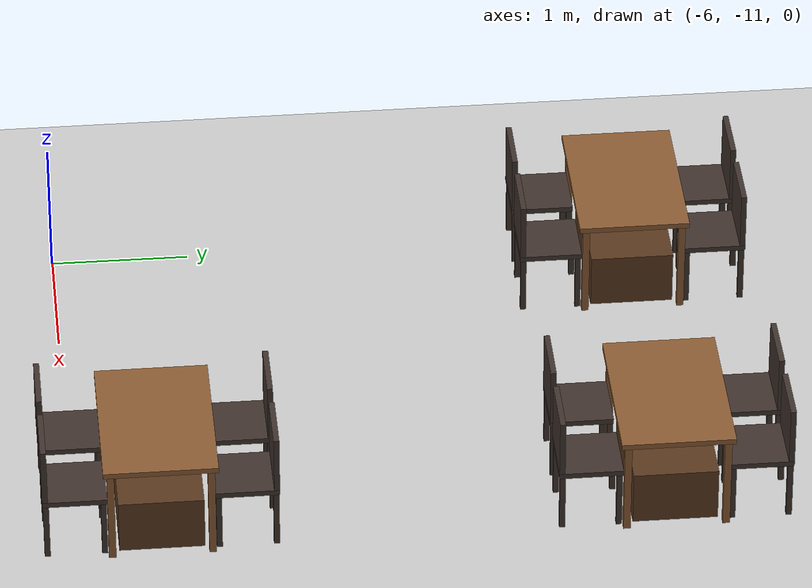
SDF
<sdf version="1.6">
 <world name="restaurant">
  <model name="ground_plane">
   <static>1</static>
   <link name="link">
    <collision name="collision">
     <geometry><plane><normal>0 0 1</normal><size>100 100</size></plane></geometry>
     <surface><friction><ode><mu>100</mu><mu2>50</mu2></ode></friction></surface>
    </collision>
    <visual name="visual">
     <cast_shadows>0</cast_shadows>
     <geometry><plane><normal>0 0 1</normal><size>100 100</size></plane></geometry>
     <material>
      <script><uri>file://media/materials/scripts/gazebo.material</uri><name>Gazebo/Grey</name></script>
     </material>
    </visual>
   </link>
  </model>
  <model name="table_13">
   <static>true</static>
   <pose>-5.6360 -6.7909 0 0 0 0</pose>
   <link name="link">
    <collision name="base_collision">
     <pose>0.0000 0.0000 0.2000 0 0 0</pose>
     <geometry><box><size>1.0000 0.6000 0.4000</size></box></geometry>
    </collision>
    <visual name="base_visual">
     <pose>0.0000 0.0000 0.2000 0 0 0</pose>
     <geometry><box><size>1.0000 0.6000 0.4000</size></box></geometry>
     <material>
      <ambient>0.35 0.22 0.12 1</ambient>
      <diffuse>0.35 0.22 0.12 1</diffuse>
      <specular>0.05 0.05 0.05 1</specular>
     </material>
    </visual>
    <collision name="top_collision">
     <pose>0.0000 0.0000 0.7300 0 0 0</pose>
     <geometry><box><size>1.2000 0.8000 0.0400</size></box></geometry>
    </collision>
    <visual name="top_visual">
     <pose>0.0000 0.0000 0.7300 0 0 0</pose>
     <geometry><box><size>1.2000 0.8000 0.0400</size></box></geometry>
     <material>
      <ambient>0.55 0.36 0.2 1</ambient>
      <diffuse>0.55 0.36 0.2 1</diffuse>
      <specular>0.05 0.05 0.05 1</specular>
     </material>
    </visual>
    <collision name="leg0_collision">
     <pose>0.5500 0.3500 0.3550 0 0 0</pose>
     <geometry><box><size>0.0500 0.0500 0.7100</size></box></geometry>
    </collision>
    <visual name="leg0_visual">
     <pose>0.5500 0.3500 0.3550 0 0 0</pose>
     <geometry><box><size>0.0500 0.0500 0.7100</size></box></geometry>
     <material>
      <ambient>0.55 0.36 0.2 1</ambient>
      <diffuse>0.55 0.36 0.2 1</diffuse>
      <specular>0.05 0.05 0.05 1</specular>
     </material>
    </visual>
    <collision name="leg1_collision">
     <pose>0.5500 -0.3500 0.3550 0 0 0</pose>
     <geometry><box><size>0.0500 0.0500 0.7100</size></box></geometry>
    </collision>
    <visual name="leg1_visual">
     <pose>0.5500 -0.3500 0.3550 0 0 0</pose>
     <geometry><box><size>0.0500 0.0500 0.7100</size></box></geometry>
     <material>
      <ambient>0.55 0.36 0.2 1</ambient>
      <diffuse>0.55 0.36 0.2 1</diffuse>
      <specular>0.05 0.05 0.05 1</specular>
     </material>
    </visual>
    <collision name="leg2_collision">
     <pose>-0.5500 0.3500 0.3550 0 0 0</pose>
     <geometry><box><size>0.0500 0.0500 0.7100</size></box></geometry>
    </collision>
    <visual name="leg2_visual">
     <pose>-0.5500 0.3500 0.3550 0 0 0</pose>
     <geometry><box><size>0.0500 0.0500 0.7100</size></box></geometry>
     <material>
      <ambient>0.55 0.36 0.2 1</ambient>
      <diffuse>0.55 0.36 0.2 1</diffuse>
      <specular>0.05 0.05 0.05 1</specular>
     </material>
    </visual>
    <collision name="leg3_collision">
     <pose>-0.5500 -0.3500 0.3550 0 0 0</pose>
     <geometry><box><size>0.0500 0.0500 0.7100</size></box></geometry>
    </collision>
    <visual name="leg3_visual">
     <pose>-0.5500 -0.3500 0.3550 0 0 0</pose>
     <geometry><box><size>0.0500 0.0500 0.7100</size></box></geometry>
     <material>
      <ambient>0.55 0.36 0.2 1</ambient>
      <diffuse>0.55 0.36 0.2 1</diffuse>
      <specular>0.05 0.05 0.05 1</specular>
     </material>
    </visual>
    <collision name="chair0_seat_collision">
     <pose>-0.3000 0.6000 0.4500 0 0 0</pose>
     <geometry><box><size>0.4500 0.4500 0.0400</size></box></geometry>
    </collision>
    <visual name="chair0_seat_visual">
     <pose>-0.3000 0.6000 0.4500 0 0 0</pose>
     <geometry><box><size>0.4500 0.4500 0.0400</size></box></geometry>
     <material>
      <ambient>0.25 0.2 0.18 1</ambient>
      <diffuse>0.25 0.2 0.18 1</diffuse>
      <specular>0.05 0.05 0.05 1</specular>
     </material>
    </visual>
    <collision name="chair0_leg0_collision">
     <pose>-0.1000 0.8000 0.2150 0 0 0</pose>
     <geometry><box><size>0.0400 0.0400 0.4300</size></box></geometry>
    </collision>
    <visual name="chair0_leg0_visual">
     <pose>-0.1000 0.8000 0.2150 0 0 0</pose>
     <geometry><box><size>0.0400 0.0400 0.4300</size></box></geometry>
     <material>
      <ambient>0.25 0.2 0.18 1</ambient>
      <diffuse>0.25 0.2 0.18 1</diffuse>
      <specular>0.05 0.05 0.05 1</specular>
     </material>
    </visual>
    <collision name="chair0_leg1_collision">
     <pose>-0.1000 0.4000 0.2150 0 0 0</pose>
     <geometry><box><size>0.0400 0.0400 0.4300</size></box></geometry>
    </collision>
    <visual name="chair0_leg1_visual">
     <pose>-0.1000 0.4000 0.2150 0 0 0</pose>
     <geometry><box><size>0.0400 0.0400 0.4300</size></box></geometry>
     <material>
      <ambient>0.25 0.2 0.18 1</ambient>
      <diffuse>0.25 0.2 0.18 1</diffuse>
      <specular>0.05 0.05 0.05 1</specular>
     </material>
    </visual>
    <collision name="chair0_leg2_collision">
     <pose>-0.5000 0.8000 0.2150 0 0 0</pose>
     <geometry><box><size>0.0400 0.0400 0.4300</size></box></geometry>
    </collision>
    <visual name="chair0_leg2_visual">
     <pose>-0.5000 0.8000 0.2150 0 0 0</pose>
     <geometry><box><size>0.0400 0.0400 0.4300</size></box></geometry>
     <material>
      <ambient>0.25 0.2 0.18 1</ambient>
      <diffuse>0.25 0.2 0.18 1</diffuse>
      <specular>0.05 0.05 0.05 1</specular>
     </material>
    </visual>
    <collision name="chair0_leg3_collision">
     <pose>-0.5000 0.4000 0.2150 0 0 0</pose>
     <geometry><box><size>0.0400 0.0400 0.4300</size></box></geometry>
    </collision>
    <visual name="chair0_leg3_visual">
     <pose>-0.5000 0.4000 0.2150 0 0 0</pose>
     <geometry><box><size>0.0400 0.0400 0.4300</size></box></geometry>
     <material>
      <ambient>0.25 0.2 0.18 1</ambient>
      <diffuse>0.25 0.2 0.18 1</diffuse>
      <specular>0.05 0.05 0.05 1</specular>
     </material>
    </visual>
    <collision name="chair0_back_collision">
     <pose>-0.3000 0.8050 0.6850 0 0 0</pose>
     <geometry><box><size>0.4500 0.0400 0.4300</size></box></geometry>
    </collision>
    <visual name="chair0_back_visual">
     <pose>-0.3000 0.8050 0.6850 0 0 0</pose>
     <geometry><box><size>0.4500 0.0400 0.4300</size></box></geometry>
     <material>
      <ambient>0.25 0.2 0.18 1</ambient>
      <diffuse>0.25 0.2 0.18 1</diffuse>
      <specular>0.05 0.05 0.05 1</specular>
     </material>
    </visual>
    <collision name="chair1_seat_collision">
     <pose>-0.3000 -0.6000 0.4500 0 0 0</pose>
     <geometry><box><size>0.4500 0.4500 0.0400</size></box></geometry>
    </collision>
    <visual name="chair1_seat_visual">
     <pose>-0.3000 -0.6000 0.4500 0 0 0</pose>
     <geometry><box><size>0.4500 0.4500 0.0400</size></box></geometry>
     <material>
      <ambient>0.25 0.2 0.18 1</ambient>
      <diffuse>0.25 0.2 0.18 1</diffuse>
      <specular>0.05 0.05 0.05 1</specular>
     </material>
    </visual>
    <collision name="chair1_leg0_collision">
     <pose>-0.1000 -0.4000 0.2150 0 0 0</pose>
     <geometry><box><size>0.0400 0.0400 0.4300</size></box></geometry>
    </collision>
    <visual name="chair1_leg0_visual">
     <pose>-0.1000 -0.4000 0.2150 0 0 0</pose>
     <geometry><box><size>0.0400 0.0400 0.4300</size></box></geometry>
     <material>
      <ambient>0.25 0.2 0.18 1</ambient>
      <diffuse>0.25 0.2 0.18 1</diffuse>
      <specular>0.05 0.05 0.05 1</specular>
     </material>
    </visual>
    <collision name="chair1_leg1_collision">
     <pose>-0.1000 -0.8000 0.2150 0 0 0</pose>
     <geometry><box><size>0.0400 0.0400 0.4300</size></box></geometry>
    </collision>
    <visual name="chair1_leg1_visual">
     <pose>-0.1000 -0.8000 0.2150 0 0 0</pose>
     <geometry><box><size>0.0400 0.0400 0.4300</size></box></geometry>
     <material>
      <ambient>0.25 0.2 0.18 1</ambient>
      <diffuse>0.25 0.2 0.18 1</diffuse>
      <specular>0.05 0.05 0.05 1</specular>
     </material>
    </visual>
    <collision name="chair1_leg2_collision">
     <pose>-0.5000 -0.4000 0.2150 0 0 0</pose>
     <geometry><box><size>0.0400 0.0400 0.4300</size></box></geometry>
    </collision>
    <visual name="chair1_leg2_visual">
     <pose>-0.5000 -0.4000 0.2150 0 0 0</pose>
     <geometry><box><size>0.0400 0.0400 0.4300</size></box></geometry>
     <material>
      <ambient>0.25 0.2 0.18 1</ambient>
      <diffuse>0.25 0.2 0.18 1</diffuse>
      <specular>0.05 0.05 0.05 1</specular>
     </material>
    </visual>
    <collision name="chair1_leg3_collision">
     <pose>-0.5000 -0.8000 0.2150 0 0 0</pose>
     <geometry><box><size>0.0400 0.0400 0.4300</size></box></geometry>
    </collision>
    <visual name="chair1_leg3_visual">
     <pose>-0.5000 -0.8000 0.2150 0 0 0</pose>
     <geometry><box><size>0.0400 0.0400 0.4300</size></box></geometry>
     <material>
      <ambient>0.25 0.2 0.18 1</ambient>
      <diffuse>0.25 0.2 0.18 1</diffuse>
      <specular>0.05 0.05 0.05 1</specular>
     </material>
    </visual>
    <collision name="chair1_back_collision">
     <pose>-0.3000 -0.8050 0.6850 0 0 0</pose>
     <geometry><box><size>0.4500 0.0400 0.4300</size></box></geometry>
    </collision>
    <visual name="chair1_back_visual">
     <pose>-0.3000 -0.8050 0.6850 0 0 0</pose>
     <geometry><box><size>0.4500 0.0400 0.4300</size></box></geometry>
     <material>
      <ambient>0.25 0.2 0.18 1</ambient>
      <diffuse>0.25 0.2 0.18 1</diffuse>
      <specular>0.05 0.05 0.05 1</specular>
     </material>
    </visual>
    <collision name="chair2_seat_collision">
     <pose>0.3000 0.6000 0.4500 0 0 0</pose>
     <geometry><box><size>0.4500 0.4500 0.0400</size></box></geometry>
    </collision>
    <visual name="chair2_seat_visual">
     <pose>0.3000 0.6000 0.4500 0 0 0</pose>
     <geometry><box><size>0.4500 0.4500 0.0400</size></box></geometry>
     <material>
      <ambient>0.25 0.2 0.18 1</ambient>
      <diffuse>0.25 0.2 0.18 1</diffuse>
      <specular>0.05 0.05 0.05 1</specular>
     </material>
    </visual>
    <collision name="chair2_leg0_collision">
     <pose>0.5000 0.8000 0.2150 0 0 0</pose>
     <geometry><box><size>0.0400 0.0400 0.4300</size></box></geometry>
    </collision>
    <visual name="chair2_leg0_visual">
     <pose>0.5000 0.8000 0.2150 0 0 0</pose>
     <geometry><box><size>0.0400 0.0400 0.4300</size></box></geometry>
     <material>
      <ambient>0.25 0.2 0.18 1</ambient>
      <diffuse>0.25 0.2 0.18 1</diffuse>
      <specular>0.05 0.05 0.05 1</specular>
     </material>
    </visual>
    <collision name="chair2_leg1_collision">
     <pose>0.5000 0.4000 0.2150 0 0 0</pose>
     <geometry><box><size>0.0400 0.0400 0.4300</size></box></geometry>
    </collision>
    <visual name="chair2_leg1_visual">
     <pose>0.5000 0.4000 0.2150 0 0 0</pose>
     <geometry><box><size>0.0400 0.0400 0.4300</size></box></geometry>
     <material>
      <ambient>0.25 0.2 0.18 1</ambient>
      <diffuse>0.25 0.2 0.18 1</diffuse>
      <specular>0.05 0.05 0.05 1</specular>
     </material>
    </visual>
    <collision name="chair2_leg2_collision">
     <pose>0.1000 0.8000 0.2150 0 0 0</pose>
     <geometry><box><size>0.0400 0.0400 0.4300</size></box></geometry>
    </collision>
    <visual name="chair2_leg2_visual">
     <pose>0.1000 0.8000 0.2150 0 0 0</pose>
     <geometry><box><size>0.0400 0.0400 0.4300</size></box></geometry>
     <material>
      <ambient>0.25 0.2 0.18 1</ambient>
      <diffuse>0.25 0.2 0.18 1</diffuse>
      <specular>0.05 0.05 0.05 1</specular>
     </material>
    </visual>
    <collision name="chair2_leg3_collision">
     <pose>0.1000 0.4000 0.2150 0 0 0</pose>
     <geometry><box><size>0.0400 0.0400 0.4300</size></box></geometry>
    </collision>
    <visual name="chair2_leg3_visual">
     <pose>0.1000 0.4000 0.2150 0 0 0</pose>
     <geometry><box><size>0.0400 0.0400 0.4300</size></box></geometry>
     <material>
      <ambient>0.25 0.2 0.18 1</ambient>
      <diffuse>0.25 0.2 0.18 1</diffuse>
      <specular>0.05 0.05 0.05 1</specular>
     </material>
    </visual>
    <collision name="chair2_back_collision">
     <pose>0.3000 0.8050 0.6850 0 0 0</pose>
     <geometry><box><size>0.4500 0.0400 0.4300</size></box></geometry>
    </collision>
    <visual name="chair2_back_visual">
     <pose>0.3000 0.8050 0.6850 0 0 0</pose>
     <geometry><box><size>0.4500 0.0400 0.4300</size></box></geometry>
     <material>
      <ambient>0.25 0.2 0.18 1</ambient>
      <diffuse>0.25 0.2 0.18 1</diffuse>
      <specular>0.05 0.05 0.05 1</specular>
     </material>
    </visual>
    <collision name="chair3_seat_collision">
     <pose>0.3000 -0.6000 0.4500 0 0 0</pose>
     <geometry><box><size>0.4500 0.4500 0.0400</size></box></geometry>
    </collision>
    <visual name="chair3_seat_visual">
     <pose>0.3000 -0.6000 0.4500 0 0 0</pose>
     <geometry><box><size>0.4500 0.4500 0.0400</size></box></geometry>
     <material>
      <ambient>0.25 0.2 0.18 1</ambient>
      <diffuse>0.25 0.2 0.18 1</diffuse>
      <specular>0.05 0.05 0.05 1</specular>
     </material>
    </visual>
    <collision name="chair3_leg0_collision">
     <pose>0.5000 -0.4000 0.2150 0 0 0</pose>
     <geometry><box><size>0.0400 0.0400 0.4300</size></box></geometry>
    </collision>
    <visual name="chair3_leg0_visual">
     <pose>0.5000 -0.4000 0.2150 0 0 0</pose>
     <geometry><box><size>0.0400 0.0400 0.4300</size></box></geometry>
     <material>
      <ambient>0.25 0.2 0.18 1</ambient>
      <diffuse>0.25 0.2 0.18 1</diffuse>
      <specular>0.05 0.05 0.05 1</specular>
     </material>
    </visual>
    <collision name="chair3_leg1_collision">
     <pose>0.5000 -0.8000 0.2150 0 0 0</pose>
     <geometry><box><size>0.0400 0.0400 0.4300</size></box></geometry>
    </collision>
    <visual name="chair3_leg1_visual">
     <pose>0.5000 -0.8000 0.2150 0 0 0</pose>
     <geometry><box><size>0.0400 0.0400 0.4300</size></box></geometry>
     <material>
      <ambient>0.25 0.2 0.18 1</ambient>
      <diffuse>0.25 0.2 0.18 1</diffuse>
      <specular>0.05 0.05 0.05 1</specular>
     </material>
    </visual>
    <collision name="chair3_leg2_collision">
     <pose>0.1000 -0.4000 0.2150 0 0 0</pose>
     <geometry><box><size>0.0400 0.0400 0.4300</size></box></geometry>
    </collision>
    <visual name="chair3_leg2_visual">
     <pose>0.1000 -0.4000 0.2150 0 0 0</pose>
     <geometry><box><size>0.0400 0.0400 0.4300</size></box></geometry>
     <material>
      <ambient>0.25 0.2 0.18 1</ambient>
      <diffuse>0.25 0.2 0.18 1</diffuse>
      <specular>0.05 0.05 0.05 1</specular>
     </material>
    </visual>
    <collision name="chair3_leg3_collision">
     <pose>0.1000 -0.8000 0.2150 0 0 0</pose>
     <geometry><box><size>0.0400 0.0400 0.4300</size></box></geometry>
    </collision>
    <visual name="chair3_leg3_visual">
     <pose>0.1000 -0.8000 0.2150 0 0 0</pose>
     <geometry><box><size>0.0400 0.0400 0.4300</size></box></geometry>
     <material>
      <ambient>0.25 0.2 0.18 1</ambient>
      <diffuse>0.25 0.2 0.18 1</diffuse>
      <specular>0.05 0.05 0.05 1</specular>
     </material>
    </visual>
    <collision name="chair3_back_collision">
     <pose>0.3000 -0.8050 0.6850 0 0 0</pose>
     <geometry><box><size>0.4500 0.0400 0.4300</size></box></geometry>
    </collision>
    <visual name="chair3_back_visual">
     <pose>0.3000 -0.8050 0.6850 0 0 0</pose>
     <geometry><box><size>0.4500 0.0400 0.4300</size></box></geometry>
     <material>
      <ambient>0.25 0.2 0.18 1</ambient>
      <diffuse>0.25 0.2 0.18 1</diffuse>
      <specular>0.05 0.05 0.05 1</specular>
     </material>
    </visual>
   </link>
  </model>
  <model name="table_14">
   <static>true</static>
   <pose>-3.0360 -6.7909 0 0 0 0</pose>
   <link name="link">
    <collision name="base_collision">
     <pose>0.0000 0.0000 0.2000 0 0 0</pose>
     <geometry><box><size>1.0000 0.6000 0.4000</size></box></geometry>
    </collision>
    <visual name="base_visual">
     <pose>0.0000 0.0000 0.2000 0 0 0</pose>
     <geometry><box><size>1.0000 0.6000 0.4000</size></box></geometry>
     <material>
      <ambient>0.35 0.22 0.12 1</ambient>
      <diffuse>0.35 0.22 0.12 1</diffuse>
      <specular>0.05 0.05 0.05 1</specular>
     </material>
    </visual>
    <collision name="top_collision">
     <pose>0.0000 0.0000 0.7300 0 0 0</pose>
     <geometry><box><size>1.2000 0.8000 0.0400</size></box></geometry>
    </collision>
    <visual name="top_visual">
     <pose>0.0000 0.0000 0.7300 0 0 0</pose>
     <geometry><box><size>1.2000 0.8000 0.0400</size></box></geometry>
     <material>
      <ambient>0.55 0.36 0.2 1</ambient>
      <diffuse>0.55 0.36 0.2 1</diffuse>
      <specular>0.05 0.05 0.05 1</specular>
     </material>
    </visual>
    <collision name="leg0_collision">
     <pose>0.5500 0.3500 0.3550 0 0 0</pose>
     <geometry><box><size>0.0500 0.0500 0.7100</size></box></geometry>
    </collision>
    <visual name="leg0_visual">
     <pose>0.5500 0.3500 0.3550 0 0 0</pose>
     <geometry><box><size>0.0500 0.0500 0.7100</size></box></geometry>
     <material>
      <ambient>0.55 0.36 0.2 1</ambient>
      <diffuse>0.55 0.36 0.2 1</diffuse>
      <specular>0.05 0.05 0.05 1</specular>
     </material>
    </visual>
    <collision name="leg1_collision">
     <pose>0.5500 -0.3500 0.3550 0 0 0</pose>
     <geometry><box><size>0.0500 0.0500 0.7100</size></box></geometry>
    </collision>
    <visual name="leg1_visual">
     <pose>0.5500 -0.3500 0.3550 0 0 0</pose>
     <geometry><box><size>0.0500 0.0500 0.7100</size></box></geometry>
     <material>
      <ambient>0.55 0.36 0.2 1</ambient>
      <diffuse>0.55 0.36 0.2 1</diffuse>
      <specular>0.05 0.05 0.05 1</specular>
     </material>
    </visual>
    <collision name="leg2_collision">
     <pose>-0.5500 0.3500 0.3550 0 0 0</pose>
     <geometry><box><size>0.0500 0.0500 0.7100</size></box></geometry>
    </collision>
    <visual name="leg2_visual">
     <pose>-0.5500 0.3500 0.3550 0 0 0</pose>
     <geometry><box><size>0.0500 0.0500 0.7100</size></box></geometry>
     <material>
      <ambient>0.55 0.36 0.2 1</ambient>
      <diffuse>0.55 0.36 0.2 1</diffuse>
      <specular>0.05 0.05 0.05 1</specular>
     </material>
    </visual>
    <collision name="leg3_collision">
     <pose>-0.5500 -0.3500 0.3550 0 0 0</pose>
     <geometry><box><size>0.0500 0.0500 0.7100</size></box></geometry>
    </collision>
    <visual name="leg3_visual">
     <pose>-0.5500 -0.3500 0.3550 0 0 0</pose>
     <geometry><box><size>0.0500 0.0500 0.7100</size></box></geometry>
     <material>
      <ambient>0.55 0.36 0.2 1</ambient>
      <diffuse>0.55 0.36 0.2 1</diffuse>
      <specular>0.05 0.05 0.05 1</specular>
     </material>
    </visual>
    <collision name="chair0_seat_collision">
     <pose>-0.3000 0.6000 0.4500 0 0 0</pose>
     <geometry><box><size>0.4500 0.4500 0.0400</size></box></geometry>
    </collision>
    <visual name="chair0_seat_visual">
     <pose>-0.3000 0.6000 0.4500 0 0 0</pose>
     <geometry><box><size>0.4500 0.4500 0.0400</size></box></geometry>
     <material>
      <ambient>0.25 0.2 0.18 1</ambient>
      <diffuse>0.25 0.2 0.18 1</diffuse>
      <specular>0.05 0.05 0.05 1</specular>
     </material>
    </visual>
    <collision name="chair0_leg0_collision">
     <pose>-0.1000 0.8000 0.2150 0 0 0</pose>
     <geometry><box><size>0.0400 0.0400 0.4300</size></box></geometry>
    </collision>
    <visual name="chair0_leg0_visual">
     <pose>-0.1000 0.8000 0.2150 0 0 0</pose>
     <geometry><box><size>0.0400 0.0400 0.4300</size></box></geometry>
     <material>
      <ambient>0.25 0.2 0.18 1</ambient>
      <diffuse>0.25 0.2 0.18 1</diffuse>
      <specular>0.05 0.05 0.05 1</specular>
     </material>
    </visual>
    <collision name="chair0_leg1_collision">
     <pose>-0.1000 0.4000 0.2150 0 0 0</pose>
     <geometry><box><size>0.0400 0.0400 0.4300</size></box></geometry>
    </collision>
    <visual name="chair0_leg1_visual">
     <pose>-0.1000 0.4000 0.2150 0 0 0</pose>
     <geometry><box><size>0.0400 0.0400 0.4300</size></box></geometry>
     <material>
      <ambient>0.25 0.2 0.18 1</ambient>
      <diffuse>0.25 0.2 0.18 1</diffuse>
      <specular>0.05 0.05 0.05 1</specular>
     </material>
    </visual>
    <collision name="chair0_leg2_collision">
     <pose>-0.5000 0.8000 0.2150 0 0 0</pose>
     <geometry><box><size>0.0400 0.0400 0.4300</size></box></geometry>
    </collision>
    <visual name="chair0_leg2_visual">
     <pose>-0.5000 0.8000 0.2150 0 0 0</pose>
     <geometry><box><size>0.0400 0.0400 0.4300</size></box></geometry>
     <material>
      <ambient>0.25 0.2 0.18 1</ambient>
      <diffuse>0.25 0.2 0.18 1</diffuse>
      <specular>0.05 0.05 0.05 1</specular>
     </material>
    </visual>
    <collision name="chair0_leg3_collision">
     <pose>-0.5000 0.4000 0.2150 0 0 0</pose>
     <geometry><box><size>0.0400 0.0400 0.4300</size></box></geometry>
    </collision>
    <visual name="chair0_leg3_visual">
     <pose>-0.5000 0.4000 0.2150 0 0 0</pose>
     <geometry><box><size>0.0400 0.0400 0.4300</size></box></geometry>
     <material>
      <ambient>0.25 0.2 0.18 1</ambient>
      <diffuse>0.25 0.2 0.18 1</diffuse>
      <specular>0.05 0.05 0.05 1</specular>
     </material>
    </visual>
    <collision name="chair0_back_collision">
     <pose>-0.3000 0.8050 0.6850 0 0 0</pose>
     <geometry><box><size>0.4500 0.0400 0.4300</size></box></geometry>
    </collision>
    <visual name="chair0_back_visual">
     <pose>-0.3000 0.8050 0.6850 0 0 0</pose>
     <geometry><box><size>0.4500 0.0400 0.4300</size></box></geometry>
     <material>
      <ambient>0.25 0.2 0.18 1</ambient>
      <diffuse>0.25 0.2 0.18 1</diffuse>
      <specular>0.05 0.05 0.05 1</specular>
     </material>
    </visual>
    <collision name="chair1_seat_collision">
     <pose>-0.3000 -0.6000 0.4500 0 0 0</pose>
     <geometry><box><size>0.4500 0.4500 0.0400</size></box></geometry>
    </collision>
    <visual name="chair1_seat_visual">
     <pose>-0.3000 -0.6000 0.4500 0 0 0</pose>
     <geometry><box><size>0.4500 0.4500 0.0400</size></box></geometry>
     <material>
      <ambient>0.25 0.2 0.18 1</ambient>
      <diffuse>0.25 0.2 0.18 1</diffuse>
      <specular>0.05 0.05 0.05 1</specular>
     </material>
    </visual>
    <collision name="chair1_leg0_collision">
     <pose>-0.1000 -0.4000 0.2150 0 0 0</pose>
     <geometry><box><size>0.0400 0.0400 0.4300</size></box></geometry>
    </collision>
    <visual name="chair1_leg0_visual">
     <pose>-0.1000 -0.4000 0.2150 0 0 0</pose>
     <geometry><box><size>0.0400 0.0400 0.4300</size></box></geometry>
     <material>
      <ambient>0.25 0.2 0.18 1</ambient>
      <diffuse>0.25 0.2 0.18 1</diffuse>
      <specular>0.05 0.05 0.05 1</specular>
     </material>
    </visual>
    <collision name="chair1_leg1_collision">
     <pose>-0.1000 -0.8000 0.2150 0 0 0</pose>
     <geometry><box><size>0.0400 0.0400 0.4300</size></box></geometry>
    </collision>
    <visual name="chair1_leg1_visual">
     <pose>-0.1000 -0.8000 0.2150 0 0 0</pose>
     <geometry><box><size>0.0400 0.0400 0.4300</size></box></geometry>
     <material>
      <ambient>0.25 0.2 0.18 1</ambient>
      <diffuse>0.25 0.2 0.18 1</diffuse>
      <specular>0.05 0.05 0.05 1</specular>
     </material>
    </visual>
    <collision name="chair1_leg2_collision">
     <pose>-0.5000 -0.4000 0.2150 0 0 0</pose>
     <geometry><box><size>0.0400 0.0400 0.4300</size></box></geometry>
    </collision>
    <visual name="chair1_leg2_visual">
     <pose>-0.5000 -0.4000 0.2150 0 0 0</pose>
     <geometry><box><size>0.0400 0.0400 0.4300</size></box></geometry>
     <material>
      <ambient>0.25 0.2 0.18 1</ambient>
      <diffuse>0.25 0.2 0.18 1</diffuse>
      <specular>0.05 0.05 0.05 1</specular>
     </material>
    </visual>
    <collision name="chair1_leg3_collision">
     <pose>-0.5000 -0.8000 0.2150 0 0 0</pose>
     <geometry><box><size>0.0400 0.0400 0.4300</size></box></geometry>
    </collision>
    <visual name="chair1_leg3_visual">
     <pose>-0.5000 -0.8000 0.2150 0 0 0</pose>
     <geometry><box><size>0.0400 0.0400 0.4300</size></box></geometry>
     <material>
      <ambient>0.25 0.2 0.18 1</ambient>
      <diffuse>0.25 0.2 0.18 1</diffuse>
      <specular>0.05 0.05 0.05 1</specular>
     </material>
    </visual>
    <collision name="chair1_back_collision">
     <pose>-0.3000 -0.8050 0.6850 0 0 0</pose>
     <geometry><box><size>0.4500 0.0400 0.4300</size></box></geometry>
    </collision>
    <visual name="chair1_back_visual">
     <pose>-0.3000 -0.8050 0.6850 0 0 0</pose>
     <geometry><box><size>0.4500 0.0400 0.4300</size></box></geometry>
     <material>
      <ambient>0.25 0.2 0.18 1</ambient>
      <diffuse>0.25 0.2 0.18 1</diffuse>
      <specular>0.05 0.05 0.05 1</specular>
     </material>
    </visual>
    <collision name="chair2_seat_collision">
     <pose>0.3000 0.6000 0.4500 0 0 0</pose>
     <geometry><box><size>0.4500 0.4500 0.0400</size></box></geometry>
    </collision>
    <visual name="chair2_seat_visual">
     <pose>0.3000 0.6000 0.4500 0 0 0</pose>
     <geometry><box><size>0.4500 0.4500 0.0400</size></box></geometry>
     <material>
      <ambient>0.25 0.2 0.18 1</ambient>
      <diffuse>0.25 0.2 0.18 1</diffuse>
      <specular>0.05 0.05 0.05 1</specular>
     </material>
    </visual>
    <collision name="chair2_leg0_collision">
     <pose>0.5000 0.8000 0.2150 0 0 0</pose>
     <geometry><box><size>0.0400 0.0400 0.4300</size></box></geometry>
    </collision>
    <visual name="chair2_leg0_visual">
     <pose>0.5000 0.8000 0.2150 0 0 0</pose>
     <geometry><box><size>0.0400 0.0400 0.4300</size></box></geometry>
     <material>
      <ambient>0.25 0.2 0.18 1</ambient>
      <diffuse>0.25 0.2 0.18 1</diffuse>
      <specular>0.05 0.05 0.05 1</specular>
     </material>
    </visual>
    <collision name="chair2_leg1_collision">
     <pose>0.5000 0.4000 0.2150 0 0 0</pose>
     <geometry><box><size>0.0400 0.0400 0.4300</size></box></geometry>
    </collision>
    <visual name="chair2_leg1_visual">
     <pose>0.5000 0.4000 0.2150 0 0 0</pose>
     <geometry><box><size>0.0400 0.0400 0.4300</size></box></geometry>
     <material>
      <ambient>0.25 0.2 0.18 1</ambient>
      <diffuse>0.25 0.2 0.18 1</diffuse>
      <specular>0.05 0.05 0.05 1</specular>
     </material>
    </visual>
    <collision name="chair2_leg2_collision">
     <pose>0.1000 0.8000 0.2150 0 0 0</pose>
     <geometry><box><size>0.0400 0.0400 0.4300</size></box></geometry>
    </collision>
    <visual name="chair2_leg2_visual">
     <pose>0.1000 0.8000 0.2150 0 0 0</pose>
     <geometry><box><size>0.0400 0.0400 0.4300</size></box></geometry>
     <material>
      <ambient>0.25 0.2 0.18 1</ambient>
      <diffuse>0.25 0.2 0.18 1</diffuse>
      <specular>0.05 0.05 0.05 1</specular>
     </material>
    </visual>
    <collision name="chair2_leg3_collision">
     <pose>0.1000 0.4000 0.2150 0 0 0</pose>
     <geometry><box><size>0.0400 0.0400 0.4300</size></box></geometry>
    </collision>
    <visual name="chair2_leg3_visual">
     <pose>0.1000 0.4000 0.2150 0 0 0</pose>
     <geometry><box><size>0.0400 0.0400 0.4300</size></box></geometry>
     <material>
      <ambient>0.25 0.2 0.18 1</ambient>
      <diffuse>0.25 0.2 0.18 1</diffuse>
      <specular>0.05 0.05 0.05 1</specular>
     </material>
    </visual>
    <collision name="chair2_back_collision">
     <pose>0.3000 0.8050 0.6850 0 0 0</pose>
     <geometry><box><size>0.4500 0.0400 0.4300</size></box></geometry>
    </collision>
    <visual name="chair2_back_visual">
     <pose>0.3000 0.8050 0.6850 0 0 0</pose>
     <geometry><box><size>0.4500 0.0400 0.4300</size></box></geometry>
     <material>
      <ambient>0.25 0.2 0.18 1</ambient>
      <diffuse>0.25 0.2 0.18 1</diffuse>
      <specular>0.05 0.05 0.05 1</specular>
     </material>
    </visual>
    <collision name="chair3_seat_collision">
     <pose>0.3000 -0.6000 0.4500 0 0 0</pose>
     <geometry><box><size>0.4500 0.4500 0.0400</size></box></geometry>
    </collision>
    <visual name="chair3_seat_visual">
     <pose>0.3000 -0.6000 0.4500 0 0 0</pose>
     <geometry><box><size>0.4500 0.4500 0.0400</size></box></geometry>
     <material>
      <ambient>0.25 0.2 0.18 1</ambient>
      <diffuse>0.25 0.2 0.18 1</diffuse>
      <specular>0.05 0.05 0.05 1</specular>
     </material>
    </visual>
    <collision name="chair3_leg0_collision">
     <pose>0.5000 -0.4000 0.2150 0 0 0</pose>
     <geometry><box><size>0.0400 0.0400 0.4300</size></box></geometry>
    </collision>
    <visual name="chair3_leg0_visual">
     <pose>0.5000 -0.4000 0.2150 0 0 0</pose>
     <geometry><box><size>0.0400 0.0400 0.4300</size></box></geometry>
     <material>
      <ambient>0.25 0.2 0.18 1</ambient>
      <diffuse>0.25 0.2 0.18 1</diffuse>
      <specular>0.05 0.05 0.05 1</specular>
     </material>
    </visual>
    <collision name="chair3_leg1_collision">
     <pose>0.5000 -0.8000 0.2150 0 0 0</pose>
     <geometry><box><size>0.0400 0.0400 0.4300</size></box></geometry>
    </collision>
    <visual name="chair3_leg1_visual">
     <pose>0.5000 -0.8000 0.2150 0 0 0</pose>
     <geometry><box><size>0.0400 0.0400 0.4300</size></box></geometry>
     <material>
      <ambient>0.25 0.2 0.18 1</ambient>
      <diffuse>0.25 0.2 0.18 1</diffuse>
      <specular>0.05 0.05 0.05 1</specular>
     </material>
    </visual>
    <collision name="chair3_leg2_collision">
     <pose>0.1000 -0.4000 0.2150 0 0 0</pose>
     <geometry><box><size>0.0400 0.0400 0.4300</size></box></geometry>
    </collision>
    <visual name="chair3_leg2_visual">
     <pose>0.1000 -0.4000 0.2150 0 0 0</pose>
     <geometry><box><size>0.0400 0.0400 0.4300</size></box></geometry>
     <material>
      <ambient>0.25 0.2 0.18 1</ambient>
      <diffuse>0.25 0.2 0.18 1</diffuse>
      <specular>0.05 0.05 0.05 1</specular>
     </material>
    </visual>
    <collision name="chair3_leg3_collision">
     <pose>0.1000 -0.8000 0.2150 0 0 0</pose>
     <geometry><box><size>0.0400 0.0400 0.4300</size></box></geometry>
    </collision>
    <visual name="chair3_leg3_visual">
     <pose>0.1000 -0.8000 0.2150 0 0 0</pose>
     <geometry><box><size>0.0400 0.0400 0.4300</size></box></geometry>
     <material>
      <ambient>0.25 0.2 0.18 1</ambient>
      <diffuse>0.25 0.2 0.18 1</diffuse>
      <specular>0.05 0.05 0.05 1</specular>
     </material>
    </visual>
    <collision name="chair3_back_collision">
     <pose>0.3000 -0.8050 0.6850 0 0 0</pose>
     <geometry><box><size>0.4500 0.0400 0.4300</size></box></geometry>
    </collision>
    <visual name="chair3_back_visual">
     <pose>0.3000 -0.8050 0.6850 0 0 0</pose>
     <geometry><box><size>0.4500 0.0400 0.4300</size></box></geometry>
     <material>
      <ambient>0.25 0.2 0.18 1</ambient>
      <diffuse>0.25 0.2 0.18 1</diffuse>
      <specular>0.05 0.05 0.05 1</specular>
     </material>
    </visual>
   </link>
  </model>
  <model name="table_20">
   <static>true</static>
   <pose>-3.0360 -10.3909 0 0 0 0</pose>
   <link name="link">
    <collision name="base_collision">
     <pose>0.0000 0.0000 0.2000 0 0 0</pose>
     <geometry><box><size>1.0000 0.6000 0.4000</size></box></geometry>
    </collision>
    <visual name="base_visual">
     <pose>0.0000 0.0000 0.2000 0 0 0</pose>
     <geometry><box><size>1.0000 0.6000 0.4000</size></box></geometry>
     <material>
      <ambient>0.35 0.22 0.12 1</ambient>
      <diffuse>0.35 0.22 0.12 1</diffuse>
      <specular>0.05 0.05 0.05 1</specular>
     </material>
    </visual>
    <collision name="top_collision">
     <pose>0.0000 0.0000 0.7300 0 0 0</pose>
     <geometry><box><size>1.2000 0.8000 0.0400</size></box></geometry>
    </collision>
    <visual name="top_visual">
     <pose>0.0000 0.0000 0.7300 0 0 0</pose>
     <geometry><box><size>1.2000 0.8000 0.0400</size></box></geometry>
     <material>
      <ambient>0.55 0.36 0.2 1</ambient>
      <diffuse>0.55 0.36 0.2 1</diffuse>
      <specular>0.05 0.05 0.05 1</specular>
     </material>
    </visual>
    <collision name="leg0_collision">
     <pose>0.5500 0.3500 0.3550 0 0 0</pose>
     <geometry><box><size>0.0500 0.0500 0.7100</size></box></geometry>
    </collision>
    <visual name="leg0_visual">
     <pose>0.5500 0.3500 0.3550 0 0 0</pose>
     <geometry><box><size>0.0500 0.0500 0.7100</size></box></geometry>
     <material>
      <ambient>0.55 0.36 0.2 1</ambient>
      <diffuse>0.55 0.36 0.2 1</diffuse>
      <specular>0.05 0.05 0.05 1</specular>
     </material>
    </visual>
    <collision name="leg1_collision">
     <pose>0.5500 -0.3500 0.3550 0 0 0</pose>
     <geometry><box><size>0.0500 0.0500 0.7100</size></box></geometry>
    </collision>
    <visual name="leg1_visual">
     <pose>0.5500 -0.3500 0.3550 0 0 0</pose>
     <geometry><box><size>0.0500 0.0500 0.7100</size></box></geometry>
     <material>
      <ambient>0.55 0.36 0.2 1</ambient>
      <diffuse>0.55 0.36 0.2 1</diffuse>
      <specular>0.05 0.05 0.05 1</specular>
     </material>
    </visual>
    <collision name="leg2_collision">
     <pose>-0.5500 0.3500 0.3550 0 0 0</pose>
     <geometry><box><size>0.0500 0.0500 0.7100</size></box></geometry>
    </collision>
    <visual name="leg2_visual">
     <pose>-0.5500 0.3500 0.3550 0 0 0</pose>
     <geometry><box><size>0.0500 0.0500 0.7100</size></box></geometry>
     <material>
      <ambient>0.55 0.36 0.2 1</ambient>
      <diffuse>0.55 0.36 0.2 1</diffuse>
      <specular>0.05 0.05 0.05 1</specular>
     </material>
    </visual>
    <collision name="leg3_collision">
     <pose>-0.5500 -0.3500 0.3550 0 0 0</pose>
     <geometry><box><size>0.0500 0.0500 0.7100</size></box></geometry>
    </collision>
    <visual name="leg3_visual">
     <pose>-0.5500 -0.3500 0.3550 0 0 0</pose>
     <geometry><box><size>0.0500 0.0500 0.7100</size></box></geometry>
     <material>
      <ambient>0.55 0.36 0.2 1</ambient>
      <diffuse>0.55 0.36 0.2 1</diffuse>
      <specular>0.05 0.05 0.05 1</specular>
     </material>
    </visual>
    <collision name="chair0_seat_collision">
     <pose>-0.3000 0.6000 0.4500 0 0 0</pose>
     <geometry><box><size>0.4500 0.4500 0.0400</size></box></geometry>
    </collision>
    <visual name="chair0_seat_visual">
     <pose>-0.3000 0.6000 0.4500 0 0 0</pose>
     <geometry><box><size>0.4500 0.4500 0.0400</size></box></geometry>
     <material>
      <ambient>0.25 0.2 0.18 1</ambient>
      <diffuse>0.25 0.2 0.18 1</diffuse>
      <specular>0.05 0.05 0.05 1</specular>
     </material>
    </visual>
    <collision name="chair0_leg0_collision">
     <pose>-0.1000 0.8000 0.2150 0 0 0</pose>
     <geometry><box><size>0.0400 0.0400 0.4300</size></box></geometry>
    </collision>
    <visual name="chair0_leg0_visual">
     <pose>-0.1000 0.8000 0.2150 0 0 0</pose>
     <geometry><box><size>0.0400 0.0400 0.4300</size></box></geometry>
     <material>
      <ambient>0.25 0.2 0.18 1</ambient>
      <diffuse>0.25 0.2 0.18 1</diffuse>
      <specular>0.05 0.05 0.05 1</specular>
     </material>
    </visual>
    <collision name="chair0_leg1_collision">
     <pose>-0.1000 0.4000 0.2150 0 0 0</pose>
     <geometry><box><size>0.0400 0.0400 0.4300</size></box></geometry>
    </collision>
    <visual name="chair0_leg1_visual">
     <pose>-0.1000 0.4000 0.2150 0 0 0</pose>
     <geometry><box><size>0.0400 0.0400 0.4300</size></box></geometry>
     <material>
      <ambient>0.25 0.2 0.18 1</ambient>
      <diffuse>0.25 0.2 0.18 1</diffuse>
      <specular>0.05 0.05 0.05 1</specular>
     </material>
    </visual>
    <collision name="chair0_leg2_collision">
     <pose>-0.5000 0.8000 0.2150 0 0 0</pose>
     <geometry><box><size>0.0400 0.0400 0.4300</size></box></geometry>
    </collision>
    <visual name="chair0_leg2_visual">
     <pose>-0.5000 0.8000 0.2150 0 0 0</pose>
     <geometry><box><size>0.0400 0.0400 0.4300</size></box></geometry>
     <material>
      <ambient>0.25 0.2 0.18 1</ambient>
      <diffuse>0.25 0.2 0.18 1</diffuse>
      <specular>0.05 0.05 0.05 1</specular>
     </material>
    </visual>
    <collision name="chair0_leg3_collision">
     <pose>-0.5000 0.4000 0.2150 0 0 0</pose>
     <geometry><box><size>0.0400 0.0400 0.4300</size></box></geometry>
    </collision>
    <visual name="chair0_leg3_visual">
     <pose>-0.5000 0.4000 0.2150 0 0 0</pose>
     <geometry><box><size>0.0400 0.0400 0.4300</size></box></geometry>
     <material>
      <ambient>0.25 0.2 0.18 1</ambient>
      <diffuse>0.25 0.2 0.18 1</diffuse>
      <specular>0.05 0.05 0.05 1</specular>
     </material>
    </visual>
    <collision name="chair0_back_collision">
     <pose>-0.3000 0.8050 0.6850 0 0 0</pose>
     <geometry><box><size>0.4500 0.0400 0.4300</size></box></geometry>
    </collision>
    <visual name="chair0_back_visual">
     <pose>-0.3000 0.8050 0.6850 0 0 0</pose>
     <geometry><box><size>0.4500 0.0400 0.4300</size></box></geometry>
     <material>
      <ambient>0.25 0.2 0.18 1</ambient>
      <diffuse>0.25 0.2 0.18 1</diffuse>
      <specular>0.05 0.05 0.05 1</specular>
     </material>
    </visual>
    <collision name="chair1_seat_collision">
     <pose>-0.3000 -0.6000 0.4500 0 0 0</pose>
     <geometry><box><size>0.4500 0.4500 0.0400</size></box></geometry>
    </collision>
    <visual name="chair1_seat_visual">
     <pose>-0.3000 -0.6000 0.4500 0 0 0</pose>
     <geometry><box><size>0.4500 0.4500 0.0400</size></box></geometry>
     <material>
      <ambient>0.25 0.2 0.18 1</ambient>
      <diffuse>0.25 0.2 0.18 1</diffuse>
      <specular>0.05 0.05 0.05 1</specular>
     </material>
    </visual>
    <collision name="chair1_leg0_collision">
     <pose>-0.1000 -0.4000 0.2150 0 0 0</pose>
     <geometry><box><size>0.0400 0.0400 0.4300</size></box></geometry>
    </collision>
    <visual name="chair1_leg0_visual">
     <pose>-0.1000 -0.4000 0.2150 0 0 0</pose>
     <geometry><box><size>0.0400 0.0400 0.4300</size></box></geometry>
     <material>
      <ambient>0.25 0.2 0.18 1</ambient>
      <diffuse>0.25 0.2 0.18 1</diffuse>
      <specular>0.05 0.05 0.05 1</specular>
     </material>
    </visual>
    <collision name="chair1_leg1_collision">
     <pose>-0.1000 -0.8000 0.2150 0 0 0</pose>
     <geometry><box><size>0.0400 0.0400 0.4300</size></box></geometry>
    </collision>
    <visual name="chair1_leg1_visual">
     <pose>-0.1000 -0.8000 0.2150 0 0 0</pose>
     <geometry><box><size>0.0400 0.0400 0.4300</size></box></geometry>
     <material>
      <ambient>0.25 0.2 0.18 1</ambient>
      <diffuse>0.25 0.2 0.18 1</diffuse>
      <specular>0.05 0.05 0.05 1</specular>
     </material>
    </visual>
    <collision name="chair1_leg2_collision">
     <pose>-0.5000 -0.4000 0.2150 0 0 0</pose>
     <geometry><box><size>0.0400 0.0400 0.4300</size></box></geometry>
    </collision>
    <visual name="chair1_leg2_visual">
     <pose>-0.5000 -0.4000 0.2150 0 0 0</pose>
     <geometry><box><size>0.0400 0.0400 0.4300</size></box></geometry>
     <material>
      <ambient>0.25 0.2 0.18 1</ambient>
      <diffuse>0.25 0.2 0.18 1</diffuse>
      <specular>0.05 0.05 0.05 1</specular>
     </material>
    </visual>
    <collision name="chair1_leg3_collision">
     <pose>-0.5000 -0.8000 0.2150 0 0 0</pose>
     <geometry><box><size>0.0400 0.0400 0.4300</size></box></geometry>
    </collision>
    <visual name="chair1_leg3_visual">
     <pose>-0.5000 -0.8000 0.2150 0 0 0</pose>
     <geometry><box><size>0.0400 0.0400 0.4300</size></box></geometry>
     <material>
      <ambient>0.25 0.2 0.18 1</ambient>
      <diffuse>0.25 0.2 0.18 1</diffuse>
      <specular>0.05 0.05 0.05 1</specular>
     </material>
    </visual>
    <collision name="chair1_back_collision">
     <pose>-0.3000 -0.8050 0.6850 0 0 0</pose>
     <geometry><box><size>0.4500 0.0400 0.4300</size></box></geometry>
    </collision>
    <visual name="chair1_back_visual">
     <pose>-0.3000 -0.8050 0.6850 0 0 0</pose>
     <geometry><box><size>0.4500 0.0400 0.4300</size></box></geometry>
     <material>
      <ambient>0.25 0.2 0.18 1</ambient>
      <diffuse>0.25 0.2 0.18 1</diffuse>
      <specular>0.05 0.05 0.05 1</specular>
     </material>
    </visual>
    <collision name="chair2_seat_collision">
     <pose>0.3000 0.6000 0.4500 0 0 0</pose>
     <geometry><box><size>0.4500 0.4500 0.0400</size></box></geometry>
    </collision>
    <visual name="chair2_seat_visual">
     <pose>0.3000 0.6000 0.4500 0 0 0</pose>
     <geometry><box><size>0.4500 0.4500 0.0400</size></box></geometry>
     <material>
      <ambient>0.25 0.2 0.18 1</ambient>
      <diffuse>0.25 0.2 0.18 1</diffuse>
      <specular>0.05 0.05 0.05 1</specular>
     </material>
    </visual>
    <collision name="chair2_leg0_collision">
     <pose>0.5000 0.8000 0.2150 0 0 0</pose>
     <geometry><box><size>0.0400 0.0400 0.4300</size></box></geometry>
    </collision>
    <visual name="chair2_leg0_visual">
     <pose>0.5000 0.8000 0.2150 0 0 0</pose>
     <geometry><box><size>0.0400 0.0400 0.4300</size></box></geometry>
     <material>
      <ambient>0.25 0.2 0.18 1</ambient>
      <diffuse>0.25 0.2 0.18 1</diffuse>
      <specular>0.05 0.05 0.05 1</specular>
     </material>
    </visual>
    <collision name="chair2_leg1_collision">
     <pose>0.5000 0.4000 0.2150 0 0 0</pose>
     <geometry><box><size>0.0400 0.0400 0.4300</size></box></geometry>
    </collision>
    <visual name="chair2_leg1_visual">
     <pose>0.5000 0.4000 0.2150 0 0 0</pose>
     <geometry><box><size>0.0400 0.0400 0.4300</size></box></geometry>
     <material>
      <ambient>0.25 0.2 0.18 1</ambient>
      <diffuse>0.25 0.2 0.18 1</diffuse>
      <specular>0.05 0.05 0.05 1</specular>
     </material>
    </visual>
    <collision name="chair2_leg2_collision">
     <pose>0.1000 0.8000 0.2150 0 0 0</pose>
     <geometry><box><size>0.0400 0.0400 0.4300</size></box></geometry>
    </collision>
    <visual name="chair2_leg2_visual">
     <pose>0.1000 0.8000 0.2150 0 0 0</pose>
     <geometry><box><size>0.0400 0.0400 0.4300</size></box></geometry>
     <material>
      <ambient>0.25 0.2 0.18 1</ambient>
      <diffuse>0.25 0.2 0.18 1</diffuse>
      <specular>0.05 0.05 0.05 1</specular>
     </material>
    </visual>
    <collision name="chair2_leg3_collision">
     <pose>0.1000 0.4000 0.2150 0 0 0</pose>
     <geometry><box><size>0.0400 0.0400 0.4300</size></box></geometry>
    </collision>
    <visual name="chair2_leg3_visual">
     <pose>0.1000 0.4000 0.2150 0 0 0</pose>
     <geometry><box><size>0.0400 0.0400 0.4300</size></box></geometry>
     <material>
      <ambient>0.25 0.2 0.18 1</ambient>
      <diffuse>0.25 0.2 0.18 1</diffuse>
      <specular>0.05 0.05 0.05 1</specular>
     </material>
    </visual>
    <collision name="chair2_back_collision">
     <pose>0.3000 0.8050 0.6850 0 0 0</pose>
     <geometry><box><size>0.4500 0.0400 0.4300</size></box></geometry>
    </collision>
    <visual name="chair2_back_visual">
     <pose>0.3000 0.8050 0.6850 0 0 0</pose>
     <geometry><box><size>0.4500 0.0400 0.4300</size></box></geometry>
     <material>
      <ambient>0.25 0.2 0.18 1</ambient>
      <diffuse>0.25 0.2 0.18 1</diffuse>
      <specular>0.05 0.05 0.05 1</specular>
     </material>
    </visual>
    <collision name="chair3_seat_collision">
     <pose>0.3000 -0.6000 0.4500 0 0 0</pose>
     <geometry><box><size>0.4500 0.4500 0.0400</size></box></geometry>
    </collision>
    <visual name="chair3_seat_visual">
     <pose>0.3000 -0.6000 0.4500 0 0 0</pose>
     <geometry><box><size>0.4500 0.4500 0.0400</size></box></geometry>
     <material>
      <ambient>0.25 0.2 0.18 1</ambient>
      <diffuse>0.25 0.2 0.18 1</diffuse>
      <specular>0.05 0.05 0.05 1</specular>
     </material>
    </visual>
    <collision name="chair3_leg0_collision">
     <pose>0.5000 -0.4000 0.2150 0 0 0</pose>
     <geometry><box><size>0.0400 0.0400 0.4300</size></box></geometry>
    </collision>
    <visual name="chair3_leg0_visual">
     <pose>0.5000 -0.4000 0.2150 0 0 0</pose>
     <geometry><box><size>0.0400 0.0400 0.4300</size></box></geometry>
     <material>
      <ambient>0.25 0.2 0.18 1</ambient>
      <diffuse>0.25 0.2 0.18 1</diffuse>
      <specular>0.05 0.05 0.05 1</specular>
     </material>
    </visual>
    <collision name="chair3_leg1_collision">
     <pose>0.5000 -0.8000 0.2150 0 0 0</pose>
     <geometry><box><size>0.0400 0.0400 0.4300</size></box></geometry>
    </collision>
    <visual name="chair3_leg1_visual">
     <pose>0.5000 -0.8000 0.2150 0 0 0</pose>
     <geometry><box><size>0.0400 0.0400 0.4300</size></box></geometry>
     <material>
      <ambient>0.25 0.2 0.18 1</ambient>
      <diffuse>0.25 0.2 0.18 1</diffuse>
      <specular>0.05 0.05 0.05 1</specular>
     </material>
    </visual>
    <collision name="chair3_leg2_collision">
     <pose>0.1000 -0.4000 0.2150 0 0 0</pose>
     <geometry><box><size>0.0400 0.0400 0.4300</size></box></geometry>
    </collision>
    <visual name="chair3_leg2_visual">
     <pose>0.1000 -0.4000 0.2150 0 0 0</pose>
     <geometry><box><size>0.0400 0.0400 0.4300</size></box></geometry>
     <material>
      <ambient>0.25 0.2 0.18 1</ambient>
      <diffuse>0.25 0.2 0.18 1</diffuse>
      <specular>0.05 0.05 0.05 1</specular>
     </material>
    </visual>
    <collision name="chair3_leg3_collision">
     <pose>0.1000 -0.8000 0.2150 0 0 0</pose>
     <geometry><box><size>0.0400 0.0400 0.4300</size></box></geometry>
    </collision>
    <visual name="chair3_leg3_visual">
     <pose>0.1000 -0.8000 0.2150 0 0 0</pose>
     <geometry><box><size>0.0400 0.0400 0.4300</size></box></geometry>
     <material>
      <ambient>0.25 0.2 0.18 1</ambient>
      <diffuse>0.25 0.2 0.18 1</diffuse>
      <specular>0.05 0.05 0.05 1</specular>
     </material>
    </visual>
    <collision name="chair3_back_collision">
     <pose>0.3000 -0.8050 0.6850 0 0 0</pose>
     <geometry><box><size>0.4500 0.0400 0.4300</size></box></geometry>
    </collision>
    <visual name="chair3_back_visual">
     <pose>0.3000 -0.8050 0.6850 0 0 0</pose>
     <geometry><box><size>0.4500 0.0400 0.4300</size></box></geometry>
     <material>
      <ambient>0.25 0.2 0.18 1</ambient>
      <diffuse>0.25 0.2 0.18 1</diffuse>
      <specular>0.05 0.05 0.05 1</specular>
     </material>
    </visual>
   </link>
  </model>
 </world>
</sdf>
